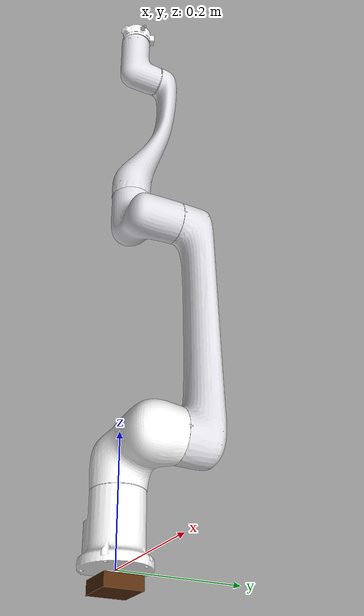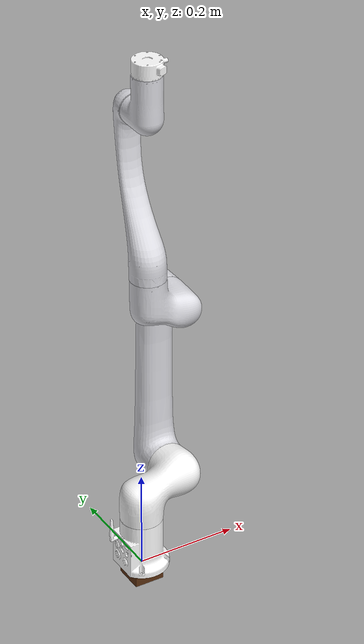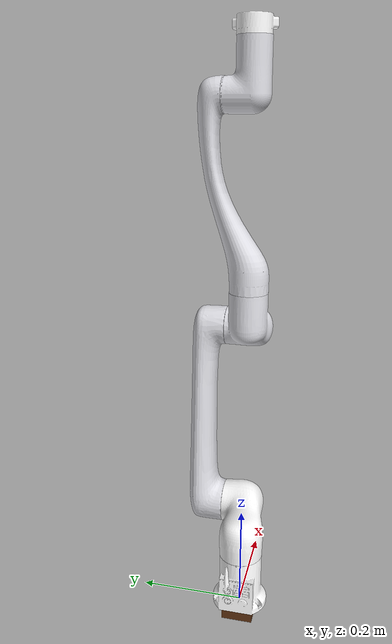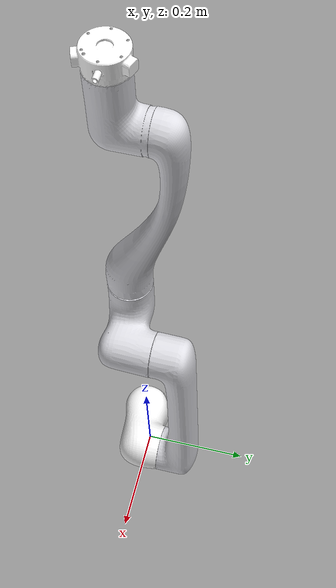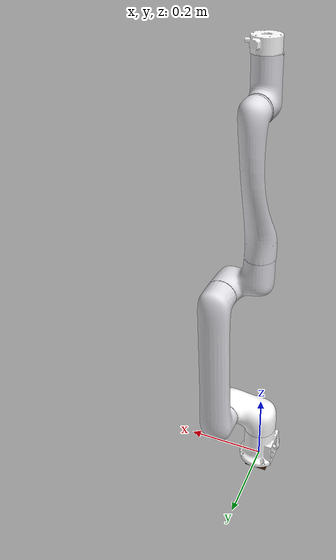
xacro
<?xml version="1.0" encoding="utf-8"?>
<robot name="rml_63_description" xmlns:xacro="http://www.ros.org/wiki/xacro">
<!-- arg link6_type -->
<xacro:arg name="link6_type" default="Link6" />
<xacro:arg name="RM63_type" default="RM63II" />
  <!-- arg->property -->
<xacro:property name="link6_type" value="$(arg link6_type)" />
<xacro:property name="RM63_type" value="$(arg RM63_type)" />
<xacro:include filename="$(find rm_description)/urdf/RML63/rml_63.transmission.xacro"/>
<xacro:include filename="$(find rm_description)/urdf/RML63/rml_63.gazebo.xacro"/>
<!-- Inertial matrix -->
<xacro:macro name="inertial_matrix" params="mass">
<inertial>
    <mass value="${mass}" />
    <inertia ixx="1.0" ixy="0.0" ixz="0.0" iyy="0.5" iyz="0.0" izz="1.0" />
</inertial>
</xacro:macro>
 <xacro:macro name="Box_inertial_matrix" params="m l w h">
       <inertial>
               <mass value="${m}" />
               <inertia ixx="${m*(h*h + l*l)/12}" ixy = "0" ixz = "0"
                   iyy="${m*(w*w + l*l)/12}" iyz= "0"
                   izz="${m*(w*w + h*h)/12}" />
       </inertial>
  </xacro:macro>
    <link name="dummy">
    </link>
    <joint name="dummy_joint" type="fixed">
    <origin xyz="0 0 0" rpy="0 0 3.14" />
      <parent link="dummy" />
      <child link="base_link" />
    </joint>
    <!-- ///////////////////////////////////////   bottom_joint   ////////////////////////////////////////// -->
    <joint name="bottom_joint" type="fixed">
        <origin xyz="0 0 0" rpy="0 0 0" />
        <parent link="base_link"/>
        <child link="bottom_link"/>
    </joint>
    <link name="bottom_link">
        <visual>
              <origin xyz=" 0 0 -0.02"  rpy="0 0 0"/>
                  <geometry>
                       <box size="0.06 0.06 0.02" />
                  </geometry>
              <material name="Brown">
                <color rgba="0.35 0.18 0.06 1" />
              </material>
        </visual>
        <collision>
            <origin xyz=" 0 0 -0.02"  rpy="0 0 0"/>
            <geometry>
                <box size="0.06 0.06 0.02" />
            </geometry>
        </collision>
        <xacro:Box_inertial_matrix m="500" l="1" w="1" h="0.02"/>
    </link>
  <xacro:if value="${ RM63_type =='RM63III' }">
  <link
    name="base_link">
    <inertial>
      <origin
        xyz="0.0002051 -8.259E-05 0.043092"
        rpy="0 0 0" />
      <mass
        value="1.6314" />
      <inertia
        ixx="0.0022252"
        ixy="7.9005E-06"
        ixz="-7.7558E-05"
        iyy="0.0022156"
        iyz="5.9846E-06"
        izz="0.0018513" />
    </inertial>
    <visual>
      <origin
        xyz="0 0 0"
        rpy="0 0 0" />
      <geometry>
        <mesh
          filename="package://rm_description/meshes/RML63/base_link_III.STL" />
      </geometry>
      <material
        name="">
        <color
          rgba="0.86667 0.86667 0.8902 1" />
      </material>
    </visual>
    <collision>
      <origin
        xyz="0 0 0"
        rpy="0 0 0" />
      <geometry>
        <mesh
          filename="package://rm_description/meshes/RML63/base_link_III.STL" />
      </geometry>
    </collision>
  </link>
  <link
    name="link1">
    <inertial>
      <origin
        xyz="-0.030909 -0.0013023 -0.0053121"
        rpy="0 0 0" />
      <mass
        value="1.7668" />
      <inertia
        ixx="0.0014534"
        ixy="-0.00017578"
        ixz="0.0002802"
        iyy="0.0043772"
        iyz="1.7209E-05"
        izz="0.0040911" />
    </inertial>
    <visual>
      <origin
        xyz="0 0 0"
        rpy="0 0 0" />
      <geometry>
        <mesh
          filename="package://rm_description/meshes/RML63/link1_III.STL" />
      </geometry>
      <material
        name="">
        <color
          rgba="1 1 1 1" />
      </material>
    </visual>
    <collision>
      <origin
        xyz="0 0 0"
        rpy="0 0 0" />
      <geometry>
        <mesh
          filename="package://rm_description/meshes/RML63/link1_III.STL" />
      </geometry>
    </collision>
  </link>
  <joint
    name="joint1"
    type="revolute">
    <origin
      xyz="0 0 0.1625"
      rpy="0 0 0" />
    <parent
      link="base_link" />
    <child
      link="link1" />
    <axis
      xyz="0 0 1" />
    <limit
      lower="-3.107"
      upper="3.107"
      effort="100"
      velocity="1" />
    <dynamics
      damping="50"
      friction="1" />
  </joint>
  </xacro:if>
  <xacro:if value="${ RM63_type =='RM63II' }">
  <link
    name="base_link">
    <inertial>
      <origin
        xyz="0.001418 -0.00010076 0.050086"
        rpy="0 0 0" />
      <mass
        value="0.66248" />
      <inertia
        ixx="0.00099641"
        ixy="3.2555E-06"
        ixz="-1.005E-05"
        iyy="0.0010163"
        iyz="1.2819E-06"
        izz="0.00067925" />
    </inertial>
    <visual>
      <origin
        xyz="0 0 0"
        rpy="0 0 0" />
      <geometry>
        <mesh
          filename="package://rm_description/meshes/RML63/base_link.STL" />
      </geometry>
      <material
        name="">
        <color
          rgba="1 1 1 1" />
      </material>
    </visual>
    <collision>
      <origin
        xyz="0 0 0"
        rpy="0 0 0" />
      <geometry>
        <mesh
          filename="package://rm_description/meshes/RML63/base_link.STL" />
      </geometry>
    </collision>
  </link>
  <link
    name="link1">
    <inertial>
      <origin
        xyz="-0.043398 -0.0074204 -0.012727"
        rpy="0 0 0" />
      <mass
        value="0.92308" />
      <inertia
        ixx="0.00093348"
        ixy="-0.00032512"
        ixz="0.00049759"
        iyy="0.0021248"
        iyz="0.00010864"
        izz="0.001984" />
    </inertial>
    <visual>
      <origin
        xyz="0 0 0"
        rpy="0 0 0" />
      <geometry>
        <mesh
          filename="package://rm_description/meshes/RML63/link1.STL" />
      </geometry>
      <material
        name="">
        <color
          rgba="1 1 1 1" />
      </material>
    </visual>
    <collision>
      <origin
        xyz="0 0 0"
        rpy="0 0 0" />
      <geometry>
        <mesh
          filename="package://rm_description/meshes/RML63/link1.STL" />
      </geometry>
    </collision>
  </link>
  <joint
    name="joint1"
    type="revolute">
    <origin
      xyz="0 0 0.172"
      rpy="0 0 0" />
    <parent
      link="base_link" />
    <child
      link="link1" />
    <axis
      xyz="0 0 1" />
    <limit
      lower="-3.107"
      upper="3.107"
      effort="100"
      velocity="1" />
  </joint>
  </xacro:if>
  <link
    name="link2">
    <inertial>
      <origin
        xyz="0.16852 9.8217E-07 -0.077258"
        rpy="0 0 0" />
      <mass
        value="4.3415" />
      <inertia
        ixx="0.0028306"
        ixy="3.3846E-07"
        ixz="4.0484E-06"
        iyy="0.075435"
        iyz="-3.3974E-08"
        izz="0.075923" />
    </inertial>
    <visual>
      <origin
        xyz="0 0 0"
        rpy="0 0 0" />
      <geometry>
        <mesh
          filename="package://rm_description/meshes/RML63/link2.STL" />
      </geometry>
      <material
        name="">
        <color
          rgba="0.86667 0.86667 0.8902 1" />
      </material>
    </visual>
    <collision>
      <origin
        xyz="0 0 0"
        rpy="0 0 0" />
      <geometry>
        <mesh
          filename="package://rm_description/meshes/RML63/link2.STL" />
      </geometry>
    </collision>
  </link>
  <joint
    name="joint2"
    type="revolute">
    <origin
      xyz="-0.086 0 0"
      rpy="-1.5708 -1.5708 0" />
    <parent
      link="link1" />
    <child
      link="link2" />
    <axis
      xyz="0 0 1" />
    <limit
      lower="-3.107"
      upper="3.107"
      effort="100"
      velocity="1" />
    <dynamics
      damping="50"
      friction="1" />
  </joint>
  <link
    name="link3">
    <inertial>
      <origin
        xyz="0.034488 -0.010948 -0.0056239"
        rpy="0 0 0" />
      <mass
        value="1.7286" />
      <inertia
        ixx="0.0014154"
        ixy="0.00068025"
        ixz="-0.00043307"
        iyy="0.0026049"
        iyz="0.00017201"
        izz="0.0028551" />
    </inertial>
    <visual>
      <origin
        xyz="0 0 0"
        rpy="0 0 0" />
      <geometry>
        <mesh
          filename="package://rm_description/meshes/RML63/link3.STL" />
      </geometry>
      <material
        name="">
        <color
          rgba="0.86667 0.86667 0.8902 1" />
      </material>
    </visual>
    <collision>
      <origin
        xyz="0 0 0"
        rpy="0 0 0" />
      <geometry>
        <mesh
          filename="package://rm_description/meshes/RML63/link3.STL" />
      </geometry>
    </collision>
  </link>
  <joint
    name="joint3"
    type="revolute">
    <origin
      xyz="0.38 0 0"
      rpy="0 0 1.5708" />
    <parent
      link="link2" />
    <child
      link="link3" />
    <axis
      xyz="0 0 1" />
    <limit
      lower="-3.107"
      upper="2.531"
      effort="100"
      velocity="1" />
    <dynamics
      damping="50"
      friction="1" />
  </joint>
  <link
    name="link4">
    <inertial>
      <origin
        xyz="4.1778E-07 -0.030483 -0.19739"
        rpy="0 0 0" />
      <mass
        value="2.4734" />
      <inertia
        ixx="0.02602"
        ixy="-1.1659E-07"
        ixz="3.1323E-07"
        iyy="0.024375"
        iyz="0.0061661"
        izz="0.002958" />
    </inertial>
    <visual>
      <origin
        xyz="0 0 0"
        rpy="0 0 0" />
      <geometry>
        <mesh
          filename="package://rm_description/meshes/RML63/link4.STL" />
      </geometry>
      <material
        name="">
        <color
          rgba="0.86667 0.86667 0.8902 1" />
      </material>
    </visual>
    <collision>
      <origin
        xyz="0 0 0"
        rpy="0 0 0" />
      <geometry>
        <mesh
          filename="package://rm_description/meshes/RML63/link4.STL" />
      </geometry>
    </collision>
  </link>
  <joint
    name="joint4"
    type="revolute">
    <origin
      xyz="0.069 -0.405 0"
      rpy="1.5708 0 0" />
    <parent
      link="link3" />
    <child
      link="link4" />
    <axis
      xyz="0 0 1" />
    <limit
      lower="-3.107"
      upper="3.107"
      effort="100"
      velocity="1" />
    <dynamics
      damping="50"
      friction="1" />
  </joint>
  <link
    name="link5">
    <inertial>
      <origin
        xyz="5.2596E-06 0.025125 -0.0072574"
        rpy="0 0 0" />
      <mass
        value="0.93162" />
      <inertia
        ixx="0.0012563"
        ixy="-1.8115E-08"
        ixz="-2.4669E-09"
        iyy="0.0005379"
        iyz="-0.00017339"
        izz="0.0011134" />
    </inertial>
    <visual>
      <origin
        xyz="0 0 0"
        rpy="0 0 0" />
      <geometry>
        <mesh
          filename="package://rm_description/meshes/RML63/link5.STL" />
      </geometry>
      <material
        name="">
        <color
          rgba="0.86667 0.86667 0.8902 1" />
      </material>
    </visual>
    <collision>
      <origin
        xyz="0 0 0"
        rpy="0 0 0" />
      <geometry>
        <mesh
          filename="package://rm_description/meshes/RML63/link5.STL" />
      </geometry>
    </collision>
  </link>
  <joint
    name="joint5"
    type="revolute">
    <origin
      xyz="0 0 0"
      rpy="1.5708 0 3.1416" />
    <parent
      link="link4" />
    <child
      link="link5" />
    <axis
      xyz="0 0 1" />
    <limit
      lower="-3.107"
      upper="3.107"
      effort="100"
      velocity="1" />
    <dynamics
      damping="50"
      friction="1" />
  </joint>
  <xacro:if value="${ link6_type =='Link6' }">
    <link
      name="link6">
      <inertial>
        <origin
          xyz="-0.00092265 9.4391E-05 -0.012705"
          rpy="0 0 0" />
        <mass
          value="0.065037" />
        <inertia
          ixx="2.1144E-05"
          ixy="-2.2803E-08"
          ixz="2.5415E-08"
          iyy="1.8109E-05"
          iyz="1.0256E-08"
          izz="3.19E-05" />
      </inertial>
      <visual>
        <origin
          xyz="0 0 0"
          rpy="0 0 0" />
        <geometry>
          <mesh
            filename="package://rm_description/meshes/RML63/link6.STL" />
        </geometry>
        <material
          name="">
          <color
            rgba="1 1 1 1" />
        </material>
      </visual>
      <collision>
        <origin
          xyz="0 0 0"
          rpy="0 0 0" />
        <geometry>
          <mesh
            filename="package://rm_description/meshes/RML63/link6.STL" />
        </geometry>
      </collision>
    </link>
    <joint
      name="joint6"
      type="revolute">
      <origin
        xyz="-0.00010308 0.115 -0.00010734"
        rpy="1.5708 0 3.1416" />
      <parent
        link="link5" />
      <child
        link="link6" />
      <axis
        xyz="0 0 1" />
      <limit
        lower="-3.14"
        upper="3.14"
        effort="100"
        velocity="1" />
      <dynamics
        damping="50"
        friction="1" />
    </joint>
  </xacro:if>
  <xacro:if value="${ link6_type =='Link6_6fb' }">
    <link
    name="link6">
    <inertial>
      <origin
        xyz="-3.305E-05 -7.0431E-06 -0.023738"
        rpy="0 0 0" />
      <mass
        value="0.3056" />
      <inertia
        ixx="0.00011383"
        ixy="-3.6531E-08"
        ixz="-1.1422E-07"
        iyy="0.00011469"
        iyz="4.3479E-08"
        izz="0.00012619" />
      </inertial>
      <visual>
        <origin
          xyz="0 0 0"
          rpy="0 0 0" />
        <geometry>
          <mesh
            filename="package://rm_description/meshes/RML63/Link6_6fb.STL" />
        </geometry>
        <material
          name="">
          <color
            rgba="0.86667 0.86667 0.8902 1" />
        </material>
      </visual>
      <collision>
        <origin
          xyz="0 0 0"
          rpy="0 0 0" />
        <geometry>
          <mesh
            filename="package://rm_description/meshes/RML63/Link6_6fb.STL" />
        </geometry>
      </collision>
    </link>
    <joint
      name="joint6"
      type="revolute">
      <origin
        xyz="0 0.1322 0"
        rpy="1.5708 0 3.1416" />
      <parent
        link="link5" />
      <child
        link="link6" />
      <axis
        xyz="0 0 1" />
      <limit
        lower="-3.14"
        upper="3.14"
        effort="100"
        velocity="1" />
    </joint>
  </xacro:if>
    <!-- Transmissions for ROS Control -->
    <xacro:macro name="transmission_block" params="joint_name">
        <transmission name="tran1">
            <type>transmission_interface/SimpleTransmission</type>
            <joint name="${joint_name}">
                <hardwareInterface>hardware_interface/PositionJointInterface</hardwareInterface>
            </joint>
            <actuator name="motor1">
                <hardwareInterface>hardware_interface/PositionJointInterface</hardwareInterface>
                <mechanicalReduction>1</mechanicalReduction>
            </actuator>
        </transmission>
    </xacro:macro>

    <xacro:transmission_block joint_name="joint1"/>
    <xacro:transmission_block joint_name="joint2"/>
    <xacro:transmission_block joint_name="joint3"/>
    <xacro:transmission_block joint_name="joint4"/>
    <xacro:transmission_block joint_name="joint5"/>
    <xacro:transmission_block joint_name="joint6"/>

    <!-- ros_control plugin -->
    <gazebo>
        <plugin name="gazebo_ros_control" filename="libgazebo_ros_control.so">
            <robotNamespace>/arm</robotNamespace>
            <robotSimType>gazebo_ros_control/DefaultRobotHWSim</robotSimType>
            <legacyModeNS>true</legacyModeNS>
        </plugin>
    </gazebo>
</robot>
